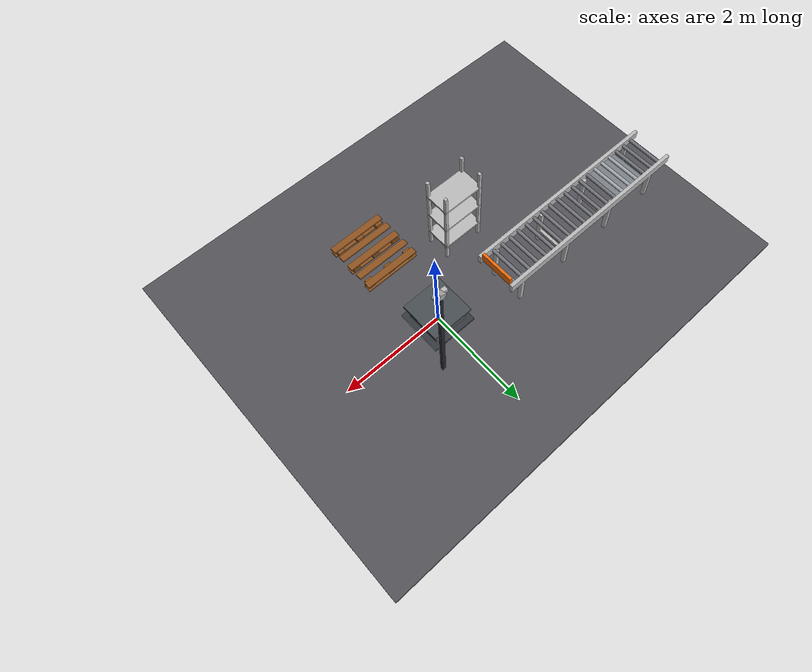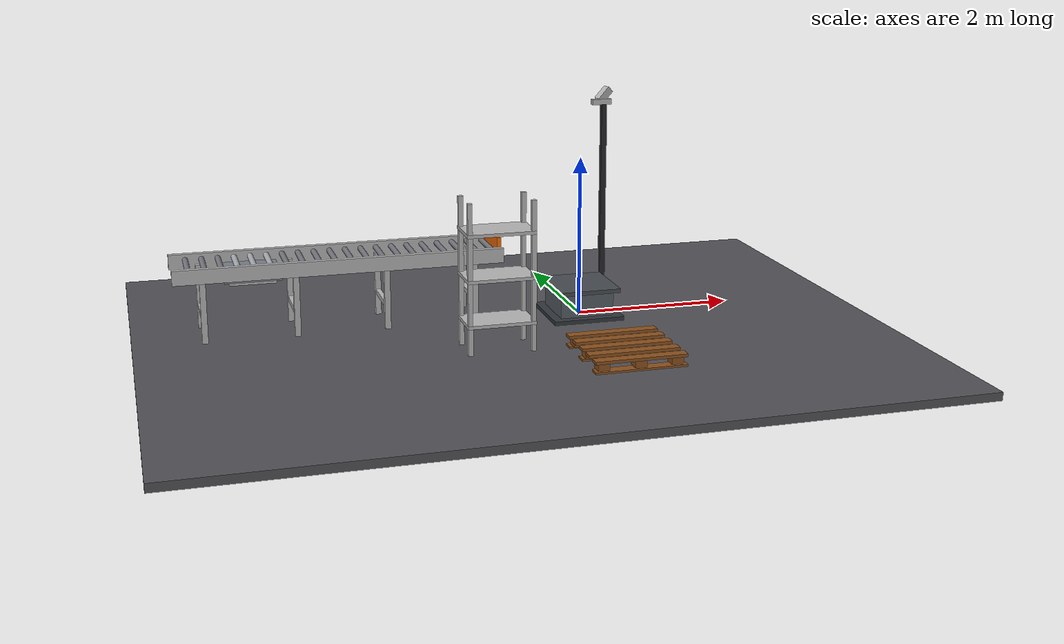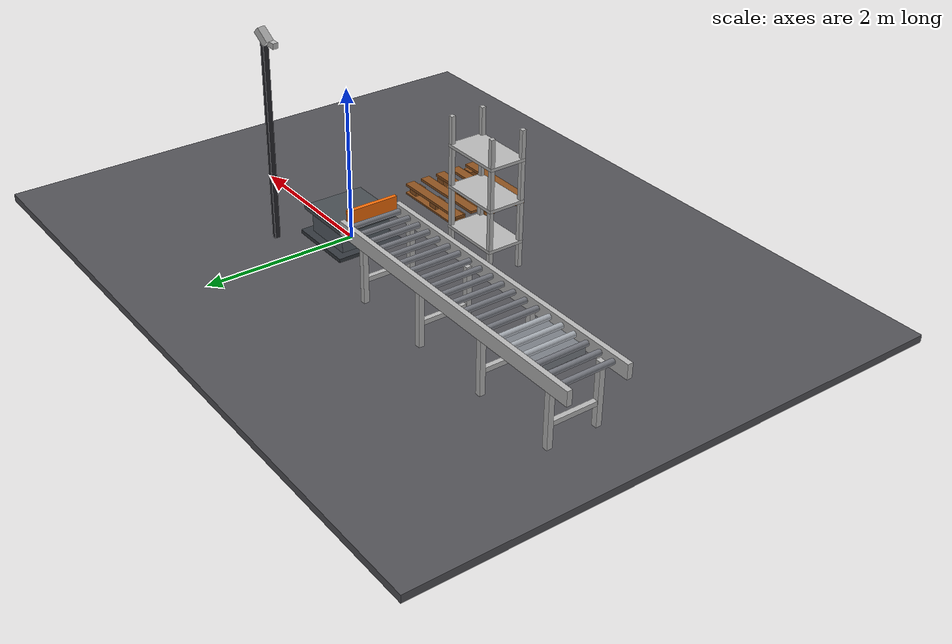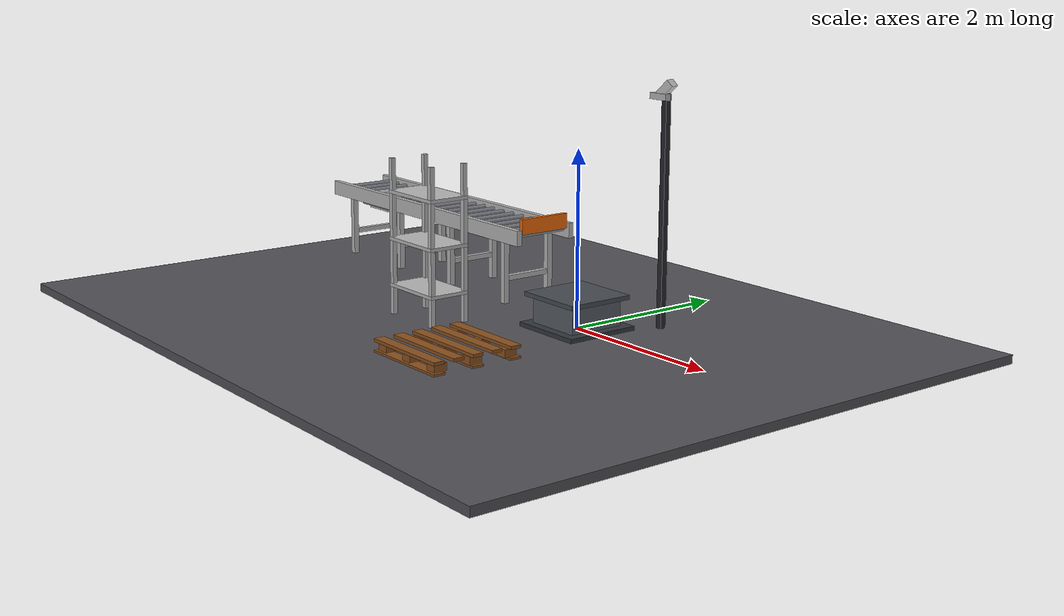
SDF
<?xml version="1.0"?>
<sdf version="1.8">
  <world name="ahead_workcell_v3_5_pedestal">
    <plugin filename="ignition-gazebo-physics-system" name="ignition::gazebo::systems::Physics"/>
    <plugin filename="ignition-gazebo-user-commands-system" name="ignition::gazebo::systems::UserCommands"/>
    <plugin filename="ignition-gazebo-scene-broadcaster-system" name="ignition::gazebo::systems::SceneBroadcaster"/>
    <plugin filename="ignition-gazebo-sensors-system" name="ignition::gazebo::systems::Sensors"><render_engine>ogre2</render_engine></plugin>
    <gravity>0 0 -9.80665</gravity>
    <physics name="default_physics" type="ignored"><max_step_size>0.001</max_step_size><real_time_factor>1.0</real_time_factor></physics>
    <light type="directional" name="sun"><pose>0 0 8 0 0 0</pose><diffuse>0.8 0.8 0.8 1</diffuse><direction>-0.4 0.3 -1</direction></light>

    <model name="floor">
      <static>true</static>
      <link name="floor_link">
        <collision name="collision">
          <pose>-1.0 -0.5 -0.05 0 0 0</pose>
          <geometry><box><size>9.0 7.0 0.10</size></box></geometry>
        </collision>
        <visual name="visual">
          <pose>-1.0 -0.5 -0.05 0 0 0</pose>
          <geometry><box><size>9.0 7.0 0.10</size></box></geometry>
          <material>
            <ambient>0.22 0.22 0.23 1</ambient>
            <diffuse>0.32 0.32 0.34 1</diffuse>
          </material>
        </visual>
      </link>
    </model>

    <model name="conveyor_main">
      <static>true</static>

      <link name="conveyor_link">

        <collision name="collision">
          <pose>-3.00 0.35 0.75 0 0 0</pose>
          <geometry><box><size>3.90 0.80 0.20</size></box></geometry>
          <surface>
            <friction>
              <ode>
                <mu>0.7</mu>
                <mu2>150</mu2>
                <fdir1>0 1 0</fdir1>
              </ode>
            </friction>
          </surface>
        </collision>

        <visual name="rail_left">
          <pose>-3.00 -0.03 0.84 0 0 0</pose>
          <geometry><box><size>4.00 0.065 0.18</size></box></geometry>
        </visual>

        <visual name="rail_right">
          <pose>-3.00 0.73 0.84 0 0 0</pose>
          <geometry><box><size>4.00 0.065 0.18</size></box></geometry>
        </visual>

      <visual name="roller_00">
        <pose>-4.800 0.35 0.86 1.57079632679 0 0</pose>
        <geometry>
          <cylinder><radius>0.035</radius><length>0.68</length></cylinder>
        </geometry>
        <material>
          <ambient>0.28 0.29 0.31 1</ambient>
          <diffuse>0.46 0.47 0.50 1</diffuse>
        </material>
      </visual>

      <visual name="roller_01">
        <pose>-4.605 0.35 0.86 1.57079632679 0 0</pose>
        <geometry>
          <cylinder><radius>0.035</radius><length>0.68</length></cylinder>
        </geometry>
        <material>
          <ambient>0.28 0.29 0.31 1</ambient>
          <diffuse>0.46 0.47 0.50 1</diffuse>
        </material>
      </visual>

      <visual name="roller_02">
        <pose>-4.410 0.35 0.86 1.57079632679 0 0</pose>
        <geometry>
          <cylinder><radius>0.035</radius><length>0.68</length></cylinder>
        </geometry>
        <material>
          <ambient>0.28 0.29 0.31 1</ambient>
          <diffuse>0.46 0.47 0.50 1</diffuse>
        </material>
      </visual>

      <visual name="roller_03">
        <pose>-4.215 0.35 0.86 1.57079632679 0 0</pose>
        <geometry>
          <cylinder><radius>0.035</radius><length>0.68</length></cylinder>
        </geometry>
        <material>
          <ambient>0.42 0.44 0.46 1</ambient>
          <diffuse>0.66 0.68 0.71 1</diffuse>
        </material>
      </visual>

      <visual name="roller_04">
        <pose>-4.020 0.35 0.86 1.57079632679 0 0</pose>
        <geometry>
          <cylinder><radius>0.035</radius><length>0.68</length></cylinder>
        </geometry>
        <material>
          <ambient>0.42 0.44 0.46 1</ambient>
          <diffuse>0.66 0.68 0.71 1</diffuse>
        </material>
      </visual>

      <visual name="roller_05">
        <pose>-3.825 0.35 0.86 1.57079632679 0 0</pose>
        <geometry>
          <cylinder><radius>0.035</radius><length>0.68</length></cylinder>
        </geometry>
        <material>
          <ambient>0.42 0.44 0.46 1</ambient>
          <diffuse>0.66 0.68 0.71 1</diffuse>
        </material>
      </visual>

      <visual name="roller_06">
        <pose>-3.630 0.35 0.86 1.57079632679 0 0</pose>
        <geometry>
          <cylinder><radius>0.035</radius><length>0.68</length></cylinder>
        </geometry>
        <material>
          <ambient>0.28 0.29 0.31 1</ambient>
          <diffuse>0.46 0.47 0.50 1</diffuse>
        </material>
      </visual>

      <visual name="roller_07">
        <pose>-3.435 0.35 0.86 1.57079632679 0 0</pose>
        <geometry>
          <cylinder><radius>0.035</radius><length>0.68</length></cylinder>
        </geometry>
        <material>
          <ambient>0.28 0.29 0.31 1</ambient>
          <diffuse>0.46 0.47 0.50 1</diffuse>
        </material>
      </visual>

      <visual name="roller_08">
        <pose>-3.240 0.35 0.86 1.57079632679 0 0</pose>
        <geometry>
          <cylinder><radius>0.035</radius><length>0.68</length></cylinder>
        </geometry>
        <material>
          <ambient>0.28 0.29 0.31 1</ambient>
          <diffuse>0.46 0.47 0.50 1</diffuse>
        </material>
      </visual>

      <visual name="roller_09">
        <pose>-3.045 0.35 0.86 1.57079632679 0 0</pose>
        <geometry>
          <cylinder><radius>0.035</radius><length>0.68</length></cylinder>
        </geometry>
        <material>
          <ambient>0.28 0.29 0.31 1</ambient>
          <diffuse>0.46 0.47 0.50 1</diffuse>
        </material>
      </visual>

      <visual name="roller_10">
        <pose>-2.850 0.35 0.86 1.57079632679 0 0</pose>
        <geometry>
          <cylinder><radius>0.035</radius><length>0.68</length></cylinder>
        </geometry>
        <material>
          <ambient>0.28 0.29 0.31 1</ambient>
          <diffuse>0.46 0.47 0.50 1</diffuse>
        </material>
      </visual>

      <visual name="roller_11">
        <pose>-2.655 0.35 0.86 1.57079632679 0 0</pose>
        <geometry>
          <cylinder><radius>0.035</radius><length>0.68</length></cylinder>
        </geometry>
        <material>
          <ambient>0.28 0.29 0.31 1</ambient>
          <diffuse>0.46 0.47 0.50 1</diffuse>
        </material>
      </visual>

      <visual name="roller_12">
        <pose>-2.460 0.35 0.86 1.57079632679 0 0</pose>
        <geometry>
          <cylinder><radius>0.035</radius><length>0.68</length></cylinder>
        </geometry>
        <material>
          <ambient>0.28 0.29 0.31 1</ambient>
          <diffuse>0.46 0.47 0.50 1</diffuse>
        </material>
      </visual>

      <visual name="roller_13">
        <pose>-2.265 0.35 0.86 1.57079632679 0 0</pose>
        <geometry>
          <cylinder><radius>0.035</radius><length>0.68</length></cylinder>
        </geometry>
        <material>
          <ambient>0.28 0.29 0.31 1</ambient>
          <diffuse>0.46 0.47 0.50 1</diffuse>
        </material>
      </visual>

      <visual name="roller_14">
        <pose>-2.070 0.35 0.86 1.57079632679 0 0</pose>
        <geometry>
          <cylinder><radius>0.035</radius><length>0.68</length></cylinder>
        </geometry>
        <material>
          <ambient>0.28 0.29 0.31 1</ambient>
          <diffuse>0.46 0.47 0.50 1</diffuse>
        </material>
      </visual>

      <visual name="roller_15">
        <pose>-1.875 0.35 0.86 1.57079632679 0 0</pose>
        <geometry>
          <cylinder><radius>0.035</radius><length>0.68</length></cylinder>
        </geometry>
        <material>
          <ambient>0.28 0.29 0.31 1</ambient>
          <diffuse>0.46 0.47 0.50 1</diffuse>
        </material>
      </visual>

      <visual name="roller_16">
        <pose>-1.680 0.35 0.86 1.57079632679 0 0</pose>
        <geometry>
          <cylinder><radius>0.035</radius><length>0.68</length></cylinder>
        </geometry>
        <material>
          <ambient>0.28 0.29 0.31 1</ambient>
          <diffuse>0.46 0.47 0.50 1</diffuse>
        </material>
      </visual>

      <visual name="roller_17">
        <pose>-1.485 0.35 0.86 1.57079632679 0 0</pose>
        <geometry>
          <cylinder><radius>0.035</radius><length>0.68</length></cylinder>
        </geometry>
        <material>
          <ambient>0.28 0.29 0.31 1</ambient>
          <diffuse>0.46 0.47 0.50 1</diffuse>
        </material>
      </visual>

      <visual name="roller_18">
        <pose>-1.290 0.35 0.86 1.57079632679 0 0</pose>
        <geometry>
          <cylinder><radius>0.035</radius><length>0.68</length></cylinder>
        </geometry>
        <material>
          <ambient>0.28 0.29 0.31 1</ambient>
          <diffuse>0.46 0.47 0.50 1</diffuse>
        </material>
      </visual>

      <visual name="roller_19">
        <pose>-1.095 0.35 0.86 1.57079632679 0 0</pose>
        <geometry>
          <cylinder><radius>0.035</radius><length>0.68</length></cylinder>
        </geometry>
        <material>
          <ambient>0.28 0.29 0.31 1</ambient>
          <diffuse>0.46 0.47 0.50 1</diffuse>
        </material>
      </visual>

        <visual name="leg_l_0">
          <pose>-4.65 0.03 0.40 0 0 0</pose>
          <geometry><box><size>0.07 0.07 0.80</size></box></geometry>
        </visual>

        <visual name="leg_r_0">
          <pose>-4.65 0.67 0.40 0 0 0</pose>
          <geometry><box><size>0.07 0.07 0.80</size></box></geometry>
        </visual>

      <visual name="crossbar_0">
        <pose>-4.65 0.35 0.30 0 0 0</pose>
        <geometry><box><size>0.06 0.68 0.06</size></box></geometry>
      </visual>

        <visual name="leg_l_1">
          <pose>-3.55 0.03 0.40 0 0 0</pose>
          <geometry><box><size>0.07 0.07 0.80</size></box></geometry>
        </visual>

        <visual name="leg_r_1">
          <pose>-3.55 0.67 0.40 0 0 0</pose>
          <geometry><box><size>0.07 0.07 0.80</size></box></geometry>
        </visual>

      <visual name="crossbar_1">
        <pose>-3.55 0.35 0.30 0 0 0</pose>
        <geometry><box><size>0.06 0.68 0.06</size></box></geometry>
      </visual>

        <visual name="leg_l_2">
          <pose>-2.45 0.03 0.40 0 0 0</pose>
          <geometry><box><size>0.07 0.07 0.80</size></box></geometry>
        </visual>

        <visual name="leg_r_2">
          <pose>-2.45 0.67 0.40 0 0 0</pose>
          <geometry><box><size>0.07 0.07 0.80</size></box></geometry>
        </visual>

      <visual name="crossbar_2">
        <pose>-2.45 0.35 0.30 0 0 0</pose>
        <geometry><box><size>0.06 0.68 0.06</size></box></geometry>
      </visual>

        <visual name="leg_l_3">
          <pose>-1.35 0.03 0.40 0 0 0</pose>
          <geometry><box><size>0.07 0.07 0.80</size></box></geometry>
        </visual>

        <visual name="leg_r_3">
          <pose>-1.35 0.67 0.40 0 0 0</pose>
          <geometry><box><size>0.07 0.07 0.80</size></box></geometry>
        </visual>

      <visual name="crossbar_3">
        <pose>-1.35 0.35 0.30 0 0 0</pose>
        <geometry><box><size>0.06 0.68 0.06</size></box></geometry>
      </visual>

        <visual name="pick_stopper">
          <pose>-1.04 0.35 0.96 0 0 0</pose>
          <geometry><box><size>0.05 0.66 0.18</size></box></geometry>
          <material>
            <ambient>0.75 0.28 0.02 1</ambient>
            <diffuse>0.95 0.42 0.03 1</diffuse>
          </material>
        </visual>

      </link>

      <plugin filename="libignition-gazebo-track-controller-system.so"
              name="gz::sim::systems::TrackController">
        <link>conveyor_link</link>
      </plugin>

    </model>

    <model name="inline_scale">
      <static>true</static>
      <link name="scale_link">

        <visual name="weighing_frame">
          <pose>-4.05 0.35 0.755 0 0 0</pose>
          <geometry><box><size>0.68 0.70 0.085</size></box></geometry>
          <material>
            <ambient>0.25 0.26 0.28 1</ambient>
            <diffuse>0.48 0.50 0.53 1</diffuse>
          </material>
        </visual>

        <visual name="loadcell_base">
          <pose>-4.05 0.35 0.685 0 0 0</pose>
          <geometry><box><size>0.56 0.54 0.045</size></box></geometry>
        </visual>

      </link>
    </model>

    <model name="hdr50_pedestal">
      <static>true</static>

      <pose>0 0 0 0 0 0</pose>

      <link name="pedestal_link">

        <!-- floor mounting plate -->
        <collision name="base_plate_collision">
          <pose>0 0 0.025 0 0 0</pose>
          <geometry>
            <box><size>0.90 0.90 0.05</size></box>
          </geometry>
        </collision>

        <visual name="base_plate_visual">
          <pose>0 0 0.025 0 0 0</pose>
          <geometry>
            <box><size>0.90 0.90 0.05</size></box>
          </geometry>
          <material>
            <ambient>0.10 0.11 0.12 1</ambient>
            <diffuse>0.20 0.22 0.24 1</diffuse>
          </material>
        </visual>

        <!-- pedestal column -->
        <collision name="column_collision">
          <pose>0 0 0.205 0 0 0</pose>
          <geometry>
            <box><size>0.68 0.68 0.31</size></box>
          </geometry>
        </collision>

        <visual name="column_visual">
          <pose>0 0 0.205 0 0 0</pose>
          <geometry>
            <box><size>0.68 0.68 0.31</size></box>
          </geometry>
          <material>
            <ambient>0.18 0.20 0.22 1</ambient>
            <diffuse>0.34 0.37 0.40 1</diffuse>
          </material>
        </visual>

        <!-- robot mounting plate -->
        <collision name="top_plate_collision">
          <pose>0 0 0.375 0 0 0</pose>
          <geometry>
            <box><size>0.82 0.82 0.05</size></box>
          </geometry>
        </collision>

        <visual name="top_plate_visual">
          <pose>0 0 0.375 0 0 0</pose>
          <geometry>
            <box><size>0.82 0.82 0.05</size></box>
          </geometry>
          <material>
            <ambient>0.12 0.13 0.14 1</ambient>
            <diffuse>0.28 0.30 0.32 1</diffuse>
          </material>
        </visual>

      </link>
    </model>

    <model name="pallet_main">
      <static>true</static>
      <pose>0 -1.75 0 0 0 0</pose>
      <link name="pallet_link">

      <collision name="bottom_runner_0_collision">
        <pose>0 -0.48 0.0125 0 0 0</pose>
        <geometry><box><size>1.1 0.14 0.025</size></box></geometry>
      </collision>
      <visual name="bottom_runner_0_visual">
        <pose>0 -0.48 0.0125 0 0 0</pose>
        <geometry><box><size>1.1 0.14 0.025</size></box></geometry>
        <material>
          <ambient>0.34 0.20 0.08 1</ambient>
          <diffuse>0.55 0.32 0.12 1</diffuse>
        </material>
      </visual>

      <collision name="bottom_runner_1_collision">
        <pose>0 0.0 0.0125 0 0 0</pose>
        <geometry><box><size>1.1 0.14 0.025</size></box></geometry>
      </collision>
      <visual name="bottom_runner_1_visual">
        <pose>0 0.0 0.0125 0 0 0</pose>
        <geometry><box><size>1.1 0.14 0.025</size></box></geometry>
        <material>
          <ambient>0.34 0.20 0.08 1</ambient>
          <diffuse>0.55 0.32 0.12 1</diffuse>
        </material>
      </visual>

      <collision name="bottom_runner_2_collision">
        <pose>0 0.48 0.0125 0 0 0</pose>
        <geometry><box><size>1.1 0.14 0.025</size></box></geometry>
      </collision>
      <visual name="bottom_runner_2_visual">
        <pose>0 0.48 0.0125 0 0 0</pose>
        <geometry><box><size>1.1 0.14 0.025</size></box></geometry>
        <material>
          <ambient>0.34 0.20 0.08 1</ambient>
          <diffuse>0.55 0.32 0.12 1</diffuse>
        </material>
      </visual>

      <collision name="support_block_0_0_collision">
        <pose>-0.44 -0.44 0.07 0 0 0</pose>
        <geometry><box><size>0.14 0.15 0.09</size></box></geometry>
      </collision>
      <visual name="support_block_0_0_visual">
        <pose>-0.44 -0.44 0.07 0 0 0</pose>
        <geometry><box><size>0.14 0.15 0.09</size></box></geometry>
        <material>
          <ambient>0.34 0.20 0.08 1</ambient>
          <diffuse>0.55 0.32 0.12 1</diffuse>
        </material>
      </visual>

      <collision name="support_block_0_1_collision">
        <pose>-0.44 0.0 0.07 0 0 0</pose>
        <geometry><box><size>0.14 0.15 0.09</size></box></geometry>
      </collision>
      <visual name="support_block_0_1_visual">
        <pose>-0.44 0.0 0.07 0 0 0</pose>
        <geometry><box><size>0.14 0.15 0.09</size></box></geometry>
        <material>
          <ambient>0.34 0.20 0.08 1</ambient>
          <diffuse>0.55 0.32 0.12 1</diffuse>
        </material>
      </visual>

      <collision name="support_block_0_2_collision">
        <pose>-0.44 0.44 0.07 0 0 0</pose>
        <geometry><box><size>0.14 0.15 0.09</size></box></geometry>
      </collision>
      <visual name="support_block_0_2_visual">
        <pose>-0.44 0.44 0.07 0 0 0</pose>
        <geometry><box><size>0.14 0.15 0.09</size></box></geometry>
        <material>
          <ambient>0.34 0.20 0.08 1</ambient>
          <diffuse>0.55 0.32 0.12 1</diffuse>
        </material>
      </visual>

      <collision name="support_block_1_0_collision">
        <pose>0.0 -0.44 0.07 0 0 0</pose>
        <geometry><box><size>0.14 0.15 0.09</size></box></geometry>
      </collision>
      <visual name="support_block_1_0_visual">
        <pose>0.0 -0.44 0.07 0 0 0</pose>
        <geometry><box><size>0.14 0.15 0.09</size></box></geometry>
        <material>
          <ambient>0.34 0.20 0.08 1</ambient>
          <diffuse>0.55 0.32 0.12 1</diffuse>
        </material>
      </visual>

      <collision name="support_block_1_1_collision">
        <pose>0.0 0.0 0.07 0 0 0</pose>
        <geometry><box><size>0.14 0.15 0.09</size></box></geometry>
      </collision>
      <visual name="support_block_1_1_visual">
        <pose>0.0 0.0 0.07 0 0 0</pose>
        <geometry><box><size>0.14 0.15 0.09</size></box></geometry>
        <material>
          <ambient>0.34 0.20 0.08 1</ambient>
          <diffuse>0.55 0.32 0.12 1</diffuse>
        </material>
      </visual>

      <collision name="support_block_1_2_collision">
        <pose>0.0 0.44 0.07 0 0 0</pose>
        <geometry><box><size>0.14 0.15 0.09</size></box></geometry>
      </collision>
      <visual name="support_block_1_2_visual">
        <pose>0.0 0.44 0.07 0 0 0</pose>
        <geometry><box><size>0.14 0.15 0.09</size></box></geometry>
        <material>
          <ambient>0.34 0.20 0.08 1</ambient>
          <diffuse>0.55 0.32 0.12 1</diffuse>
        </material>
      </visual>

      <collision name="support_block_2_0_collision">
        <pose>0.44 -0.44 0.07 0 0 0</pose>
        <geometry><box><size>0.14 0.15 0.09</size></box></geometry>
      </collision>
      <visual name="support_block_2_0_visual">
        <pose>0.44 -0.44 0.07 0 0 0</pose>
        <geometry><box><size>0.14 0.15 0.09</size></box></geometry>
        <material>
          <ambient>0.34 0.20 0.08 1</ambient>
          <diffuse>0.55 0.32 0.12 1</diffuse>
        </material>
      </visual>

      <collision name="support_block_2_1_collision">
        <pose>0.44 0.0 0.07 0 0 0</pose>
        <geometry><box><size>0.14 0.15 0.09</size></box></geometry>
      </collision>
      <visual name="support_block_2_1_visual">
        <pose>0.44 0.0 0.07 0 0 0</pose>
        <geometry><box><size>0.14 0.15 0.09</size></box></geometry>
        <material>
          <ambient>0.34 0.20 0.08 1</ambient>
          <diffuse>0.55 0.32 0.12 1</diffuse>
        </material>
      </visual>

      <collision name="support_block_2_2_collision">
        <pose>0.44 0.44 0.07 0 0 0</pose>
        <geometry><box><size>0.14 0.15 0.09</size></box></geometry>
      </collision>
      <visual name="support_block_2_2_visual">
        <pose>0.44 0.44 0.07 0 0 0</pose>
        <geometry><box><size>0.14 0.15 0.09</size></box></geometry>
        <material>
          <ambient>0.34 0.20 0.08 1</ambient>
          <diffuse>0.55 0.32 0.12 1</diffuse>
        </material>
      </visual>

      <collision name="top_board_0_collision">
        <pose>0 -0.484 0.1325 0 0 0</pose>
        <geometry><box><size>1.1 0.13 0.035</size></box></geometry>
      </collision>
      <visual name="top_board_0_visual">
        <pose>0 -0.484 0.1325 0 0 0</pose>
        <geometry><box><size>1.1 0.13 0.035</size></box></geometry>
        <material>
          <ambient>0.34 0.20 0.08 1</ambient>
          <diffuse>0.55 0.32 0.12 1</diffuse>
        </material>
      </visual>

      <collision name="top_board_1_collision">
        <pose>0 -0.242 0.1325 0 0 0</pose>
        <geometry><box><size>1.1 0.13 0.035</size></box></geometry>
      </collision>
      <visual name="top_board_1_visual">
        <pose>0 -0.242 0.1325 0 0 0</pose>
        <geometry><box><size>1.1 0.13 0.035</size></box></geometry>
        <material>
          <ambient>0.34 0.20 0.08 1</ambient>
          <diffuse>0.55 0.32 0.12 1</diffuse>
        </material>
      </visual>

      <collision name="top_board_2_collision">
        <pose>0 0.0 0.1325 0 0 0</pose>
        <geometry><box><size>1.1 0.13 0.035</size></box></geometry>
      </collision>
      <visual name="top_board_2_visual">
        <pose>0 0.0 0.1325 0 0 0</pose>
        <geometry><box><size>1.1 0.13 0.035</size></box></geometry>
        <material>
          <ambient>0.34 0.20 0.08 1</ambient>
          <diffuse>0.55 0.32 0.12 1</diffuse>
        </material>
      </visual>

      <collision name="top_board_3_collision">
        <pose>0 0.242 0.1325 0 0 0</pose>
        <geometry><box><size>1.1 0.13 0.035</size></box></geometry>
      </collision>
      <visual name="top_board_3_visual">
        <pose>0 0.242 0.1325 0 0 0</pose>
        <geometry><box><size>1.1 0.13 0.035</size></box></geometry>
        <material>
          <ambient>0.34 0.20 0.08 1</ambient>
          <diffuse>0.55 0.32 0.12 1</diffuse>
        </material>
      </visual>

      <collision name="top_board_4_collision">
        <pose>0 0.484 0.1325 0 0 0</pose>
        <geometry><box><size>1.1 0.13 0.035</size></box></geometry>
      </collision>
      <visual name="top_board_4_visual">
        <pose>0 0.484 0.1325 0 0 0</pose>
        <geometry><box><size>1.1 0.13 0.035</size></box></geometry>
        <material>
          <ambient>0.34 0.20 0.08 1</ambient>
          <diffuse>0.55 0.32 0.12 1</diffuse>
        </material>
      </visual>

      </link>
    </model>

    <model name="buffer_rack">
      <static>true</static>

      <pose>-1.35 -1.05 0 0 0 0</pose>

      <link name="rack_link">

        <visual name="post_fl">
          <pose>-0.38 -0.22 0.90 0 0 0</pose>
          <geometry><box><size>0.055 0.055 1.80</size></box></geometry>
        </visual>

        <visual name="post_fr">
          <pose>0.38 -0.22 0.90 0 0 0</pose>
          <geometry><box><size>0.055 0.055 1.80</size></box></geometry>
        </visual>

        <visual name="post_bl">
          <pose>-0.38 0.22 0.90 0 0 0</pose>
          <geometry><box><size>0.055 0.055 1.80</size></box></geometry>
        </visual>

        <visual name="post_br">
          <pose>0.38 0.22 0.90 0 0 0</pose>
          <geometry><box><size>0.055 0.055 1.80</size></box></geometry>
        </visual>

        <visual name="shelf_1">
          <pose>0 0 0.34 0 0 0</pose>
          <geometry><box><size>0.82 0.50 0.04</size></box></geometry>
        </visual>

        <visual name="shelf_2">
          <pose>0 0 0.88 0 0 0</pose>
          <geometry><box><size>0.82 0.50 0.04</size></box></geometry>
        </visual>

        <visual name="shelf_3">
          <pose>0 0 1.42 0 0 0</pose>
          <geometry><box><size>0.82 0.50 0.04</size></box></geometry>
        </visual>

      </link>
    </model>

<model name="camera_1_cctv_base">
  <static>true</static>

  <link name="camera_1_link">

    <visual name="camera_post">
      <pose>0.55 0.75 1.30 0 0 0</pose>
      <geometry>
        <box><size>0.07 0.07 2.60</size></box>
      </geometry>
      <material>
        <ambient>0.08 0.08 0.09 1</ambient>
        <diffuse>0.15 0.15 0.17 1</diffuse>
      </material>
    </visual>

    <visual name="camera_arm">
      <pose>0.50 0.70 2.57 0 0 0</pose>
      <geometry>
        <box><size>0.25 0.07 0.07</size></box>
      </geometry>
    </visual>

    <visual name="camera_housing">
      <pose>0.55 0.75 2.65 0 0.786421 -2.910502</pose>
      <geometry>
        <box><size>0.20 0.11 0.095</size></box>
      </geometry>
    </visual>

    <sensor name="cctv_camera_1" type="camera">

      <pose>0.55 0.75 2.65 0 0.786421 -2.910502</pose>

      <always_on>true</always_on>
      <update_rate>15</update_rate>

      <topic>/pac/top_camera/image</topic>

      <camera>
        <horizontal_fov>1.40</horizontal_fov>

        <image>
          <width>1280</width>
          <height>720</height>
          <format>R8G8B8</format>
        </image>

        <clip>
          <near>0.10</near>
          <far>8.0</far>
        </clip>
      </camera>

    </sensor>

  </link>
</model>

    <!-- HDP160-31 is spawned separately only after verified description is available. -->
  </world>
</sdf>
